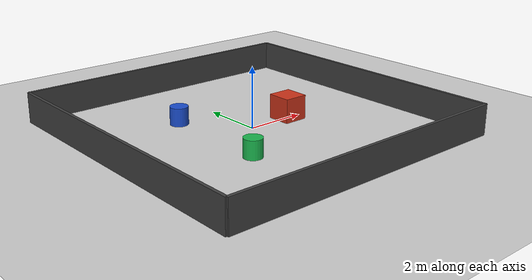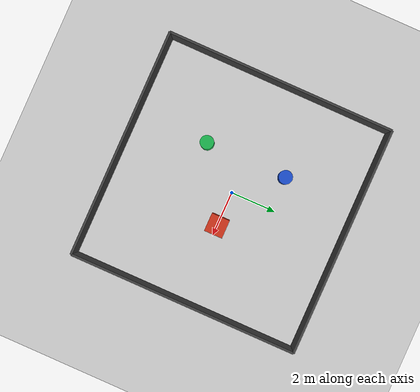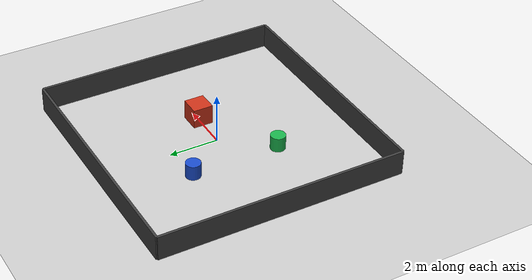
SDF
<?xml version="1.0" ?>
<sdf version="1.6">
  <world name="basic">
    <gravity>0 0 -9.81</gravity>

    <include>
      <uri>model://sun</uri>
    </include>
    <include>
      <uri>model://ground_plane</uri>
    </include>

    <physics type="ode">
      <max_step_size>0.001</max_step_size>
      <real_time_update_rate>1000</real_time_update_rate>
    </physics>

    <scene>
      <ambient>0.4 0.4 0.4 1</ambient>
      <background>0.7 0.7 0.7 1</background>
      <shadows>true</shadows>
    </scene>

    <!-- Four static boundary walls, forming a 10 m x 10 m test area. -->
    <model name="wall_north">
      <static>true</static>
      <pose>0 5 0.5 0 0 0</pose>
      <link name="link">
        <collision name="collision">
          <geometry><box><size>10 0.1 1</size></box></geometry>
        </collision>
        <visual name="visual">
          <geometry><box><size>10 0.1 1</size></box></geometry>
          <material><ambient>0.25 0.25 0.25 1</ambient></material>
        </visual>
      </link>
    </model>

    <model name="wall_south">
      <static>true</static>
      <pose>0 -5 0.5 0 0 0</pose>
      <link name="link">
        <collision name="collision">
          <geometry><box><size>10 0.1 1</size></box></geometry>
        </collision>
        <visual name="visual">
          <geometry><box><size>10 0.1 1</size></box></geometry>
          <material><ambient>0.25 0.25 0.25 1</ambient></material>
        </visual>
      </link>
    </model>

    <model name="wall_east">
      <static>true</static>
      <pose>5 0 0.5 0 0 0</pose>
      <link name="link">
        <collision name="collision">
          <geometry><box><size>0.1 10 1</size></box></geometry>
        </collision>
        <visual name="visual">
          <geometry><box><size>0.1 10 1</size></box></geometry>
          <material><ambient>0.25 0.25 0.25 1</ambient></material>
        </visual>
      </link>
    </model>

    <model name="wall_west">
      <static>true</static>
      <pose>-5 0 0.5 0 0 0</pose>
      <link name="link">
        <collision name="collision">
          <geometry><box><size>0.1 10 1</size></box></geometry>
        </collision>
        <visual name="visual">
          <geometry><box><size>0.1 10 1</size></box></geometry>
          <material><ambient>0.25 0.25 0.25 1</ambient></material>
        </visual>
      </link>
    </model>

    <!-- Simple obstacles for testing lidar scans and collision avoidance. -->
    <model name="obstacle_center">
      <static>true</static>
      <pose>1.5 0 0.4 0 0 0</pose>
      <link name="link">
        <collision name="collision">
          <geometry><box><size>0.8 0.8 0.8</size></box></geometry>
        </collision>
        <visual name="visual">
          <geometry><box><size>0.8 0.8 0.8</size></box></geometry>
          <material><ambient>0.8 0.2 0.1 1</ambient></material>
        </visual>
      </link>
    </model>

    <model name="obstacle_left">
      <static>true</static>
      <pose>-1.5 1.8 0.3 0 0 0</pose>
      <link name="link">
        <collision name="collision">
          <geometry><cylinder><radius>0.3</radius><length>0.6</length></cylinder></geometry>
        </collision>
        <visual name="visual">
          <geometry><cylinder><radius>0.3</radius><length>0.6</length></cylinder></geometry>
          <material><ambient>0.1 0.3 0.8 1</ambient></material>
        </visual>
      </link>
    </model>

    <model name="obstacle_right">
      <static>true</static>
      <pose>-1.5 -1.8 0.3 0 0 0</pose>
      <link name="link">
        <collision name="collision">
          <geometry><cylinder><radius>0.3</radius><length>0.6</length></cylinder></geometry>
        </collision>
        <visual name="visual">
          <geometry><cylinder><radius>0.3</radius><length>0.6</length></cylinder></geometry>
          <material><ambient>0.1 0.7 0.3 1</ambient></material>
        </visual>
      </link>
    </model>
  </world>
</sdf>
